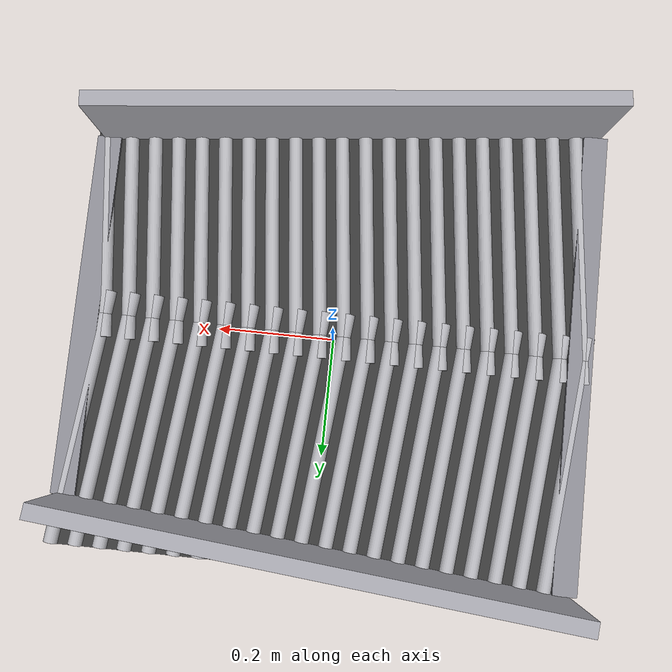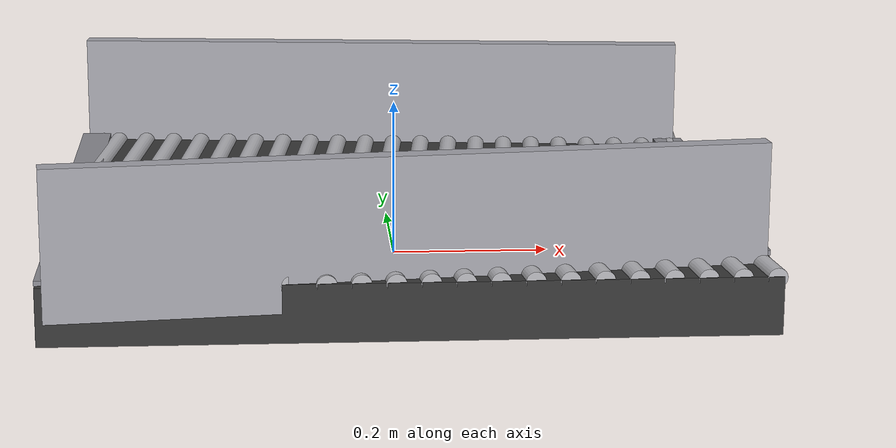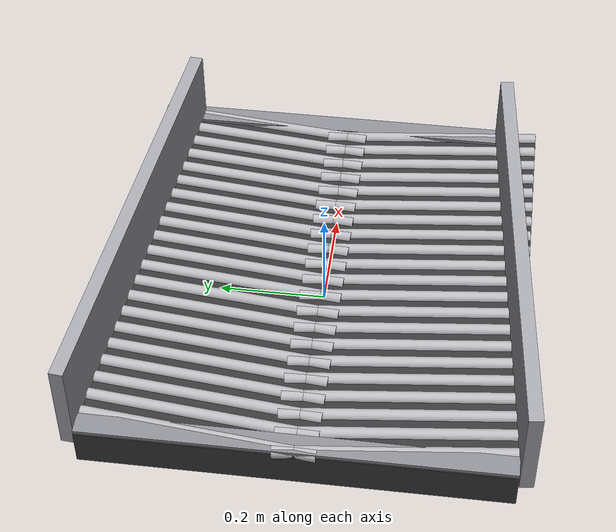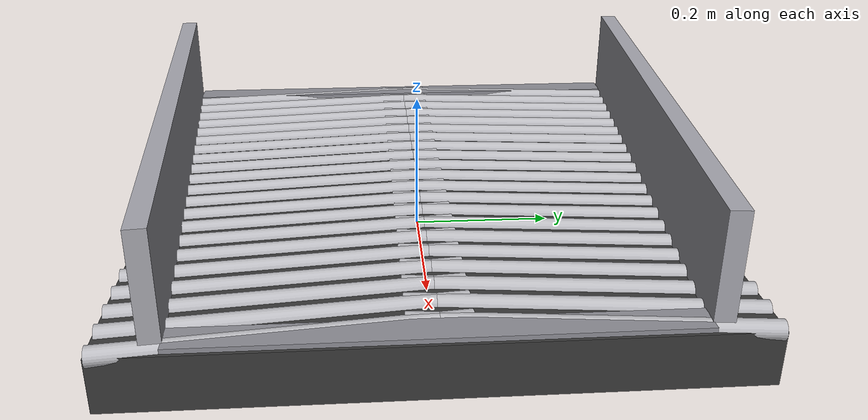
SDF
<?xml version="1.0"?>
<sdf version="1.10">
  <model name="roller_throat">
    <static>true</static>
    <link name="base">
      <collision name="base_collision"><pose>0 0 0.035 0 0 0</pose><geometry><box><size>0.86 0.76 0.07</size></box></geometry></collision>
      <visual name="base_visual"><pose>0 0 0.035 0 0 0</pose><geometry><box><size>0.86 0.76 0.07</size></box></geometry><material><ambient>0.16 0.16 0.16 1</ambient><diffuse>0.22 0.22 0.22 1</diffuse></material></visual>

      <!-- Plates are 1 mm below the moving surfaces and only catch an edge during transfer. -->
      <collision name="entry_transfer_collision">
        <pose>-0.410000 0 0.076000 0 0 0</pose>
        <geometry><box><size>0.040000 0.760000 0.006000</size></box></geometry>
        <surface><friction><ode><mu>0.05</mu><mu2>0.05</mu2><fdir1>1 0 0</fdir1></ode></friction></surface>
      </collision>
      <visual name="entry_transfer_visual">
        <pose>-0.410000 0 0.076000 0 0 0</pose>
        <geometry><box><size>0.040000 0.760000 0.006000</size></box></geometry>
        <material><ambient>0.45 0.45 0.48 1</ambient><diffuse>0.55 0.55 0.58 1</diffuse></material>
      </visual>

      <collision name="exit_transfer_collision">
        <pose>0.410000 0 0.076000 0 0 0</pose>
        <geometry><box><size>0.040000 0.600000 0.006000</size></box></geometry>
        <surface><friction><ode><mu>0.05</mu><mu2>0.05</mu2><fdir1>1 0 0</fdir1></ode></friction></surface>
      </collision>
      <visual name="exit_transfer_visual">
        <pose>0.410000 0 0.076000 0 0 0</pose>
        <geometry><box><size>0.040000 0.600000 0.006000</size></box></geometry>
        <material><ambient>0.45 0.45 0.48 1</ambient><diffuse>0.55 0.55 0.58 1</diffuse></material>
      </visual>

      <!-- A recessed low-friction tray prevents thin products falling between supports. -->
      <collision name="undertray_collision">
        <pose>0 0 0.071000 0 0 0</pose>
        <geometry><box><size>0.84 0.62 0.008000</size></box></geometry>
        <surface><friction><ode><mu>0.03</mu><mu2>0.03</mu2><fdir1>1 0 0</fdir1></ode></friction></surface>
      </collision>

      <collision name="left_guide_collision"><pose>0 -0.352500 0.125 0 0 0.099668652</pose><geometry><box><size>0.843990 0.025 0.18</size></box></geometry></collision>
      <visual name="left_guide_visual"><pose>0 -0.352500 0.125 0 0 0.099668652</pose><geometry><box><size>0.843990 0.025 0.18</size></box></geometry><material><ambient>0.55 0.55 0.58 1</ambient><diffuse>0.65 0.65 0.68 1</diffuse></material></visual>
      <collision name="right_guide_collision"><pose>0 0.352500 0.125 0 0 -0.099668652</pose><geometry><box><size>0.843990 0.025 0.18</size></box></geometry></collision>
      <visual name="right_guide_visual"><pose>0 0.352500 0.125 0 0 -0.099668652</pose><geometry><box><size>0.843990 0.025 0.18</size></box></geometry><material><ambient>0.55 0.55 0.58 1</ambient><diffuse>0.65 0.65 0.68 1</diffuse></material></visual>
    </link>

    <link name="left_rollers">

      <collision name="roller_00_collision">
        <pose>-0.400000 -0.170000 0.072000 0 0 1.675516082</pose>
        <max_contacts>8</max_contacts>
        <geometry><box><size>0.420000 0.022000 0.016000</size></box></geometry>
        <surface><friction><ode><mu>0.8</mu><mu2>0.8</mu2><fdir1>1 0 0</fdir1></ode></friction></surface>
      </collision>
      <visual name="roller_00_visual">
        <pose>-0.400000 -0.170000 0.068000 0 1.570796327 1.675516082</pose>
        <geometry><cylinder><radius>0.012000</radius><length>0.420000</length></cylinder></geometry>
        <material><ambient>0.72 0.72 0.74 1</ambient><diffuse>0.72 0.72 0.74 1</diffuse><specular>0.35 0.35 0.35 1</specular></material>
      </visual>

      <collision name="roller_01_collision">
        <pose>-0.360000 -0.170000 0.072000 0 0 1.675516082</pose>
        <max_contacts>8</max_contacts>
        <geometry><box><size>0.420000 0.022000 0.016000</size></box></geometry>
        <surface><friction><ode><mu>0.8</mu><mu2>0.8</mu2><fdir1>1 0 0</fdir1></ode></friction></surface>
      </collision>
      <visual name="roller_01_visual">
        <pose>-0.360000 -0.170000 0.068000 0 1.570796327 1.675516082</pose>
        <geometry><cylinder><radius>0.012000</radius><length>0.420000</length></cylinder></geometry>
        <material><ambient>0.72 0.72 0.74 1</ambient><diffuse>0.72 0.72 0.74 1</diffuse><specular>0.35 0.35 0.35 1</specular></material>
      </visual>

      <collision name="roller_02_collision">
        <pose>-0.320000 -0.170000 0.072000 0 0 1.675516082</pose>
        <max_contacts>8</max_contacts>
        <geometry><box><size>0.420000 0.022000 0.016000</size></box></geometry>
        <surface><friction><ode><mu>0.8</mu><mu2>0.8</mu2><fdir1>1 0 0</fdir1></ode></friction></surface>
      </collision>
      <visual name="roller_02_visual">
        <pose>-0.320000 -0.170000 0.068000 0 1.570796327 1.675516082</pose>
        <geometry><cylinder><radius>0.012000</radius><length>0.420000</length></cylinder></geometry>
        <material><ambient>0.72 0.72 0.74 1</ambient><diffuse>0.72 0.72 0.74 1</diffuse><specular>0.35 0.35 0.35 1</specular></material>
      </visual>

      <collision name="roller_03_collision">
        <pose>-0.280000 -0.170000 0.072000 0 0 1.675516082</pose>
        <max_contacts>8</max_contacts>
        <geometry><box><size>0.420000 0.022000 0.016000</size></box></geometry>
        <surface><friction><ode><mu>0.8</mu><mu2>0.8</mu2><fdir1>1 0 0</fdir1></ode></friction></surface>
      </collision>
      <visual name="roller_03_visual">
        <pose>-0.280000 -0.170000 0.068000 0 1.570796327 1.675516082</pose>
        <geometry><cylinder><radius>0.012000</radius><length>0.420000</length></cylinder></geometry>
        <material><ambient>0.72 0.72 0.74 1</ambient><diffuse>0.72 0.72 0.74 1</diffuse><specular>0.35 0.35 0.35 1</specular></material>
      </visual>

      <collision name="roller_04_collision">
        <pose>-0.240000 -0.170000 0.072000 0 0 1.675516082</pose>
        <max_contacts>8</max_contacts>
        <geometry><box><size>0.420000 0.022000 0.016000</size></box></geometry>
        <surface><friction><ode><mu>0.8</mu><mu2>0.8</mu2><fdir1>1 0 0</fdir1></ode></friction></surface>
      </collision>
      <visual name="roller_04_visual">
        <pose>-0.240000 -0.170000 0.068000 0 1.570796327 1.675516082</pose>
        <geometry><cylinder><radius>0.012000</radius><length>0.420000</length></cylinder></geometry>
        <material><ambient>0.72 0.72 0.74 1</ambient><diffuse>0.72 0.72 0.74 1</diffuse><specular>0.35 0.35 0.35 1</specular></material>
      </visual>

      <collision name="roller_05_collision">
        <pose>-0.200000 -0.170000 0.072000 0 0 1.675516082</pose>
        <max_contacts>8</max_contacts>
        <geometry><box><size>0.420000 0.022000 0.016000</size></box></geometry>
        <surface><friction><ode><mu>0.8</mu><mu2>0.8</mu2><fdir1>1 0 0</fdir1></ode></friction></surface>
      </collision>
      <visual name="roller_05_visual">
        <pose>-0.200000 -0.170000 0.068000 0 1.570796327 1.675516082</pose>
        <geometry><cylinder><radius>0.012000</radius><length>0.420000</length></cylinder></geometry>
        <material><ambient>0.72 0.72 0.74 1</ambient><diffuse>0.72 0.72 0.74 1</diffuse><specular>0.35 0.35 0.35 1</specular></material>
      </visual>

      <collision name="roller_06_collision">
        <pose>-0.160000 -0.170000 0.072000 0 0 1.675516082</pose>
        <max_contacts>8</max_contacts>
        <geometry><box><size>0.420000 0.022000 0.016000</size></box></geometry>
        <surface><friction><ode><mu>0.8</mu><mu2>0.8</mu2><fdir1>1 0 0</fdir1></ode></friction></surface>
      </collision>
      <visual name="roller_06_visual">
        <pose>-0.160000 -0.170000 0.068000 0 1.570796327 1.675516082</pose>
        <geometry><cylinder><radius>0.012000</radius><length>0.420000</length></cylinder></geometry>
        <material><ambient>0.72 0.72 0.74 1</ambient><diffuse>0.72 0.72 0.74 1</diffuse><specular>0.35 0.35 0.35 1</specular></material>
      </visual>

      <collision name="roller_07_collision">
        <pose>-0.120000 -0.170000 0.072000 0 0 1.675516082</pose>
        <max_contacts>8</max_contacts>
        <geometry><box><size>0.420000 0.022000 0.016000</size></box></geometry>
        <surface><friction><ode><mu>0.8</mu><mu2>0.8</mu2><fdir1>1 0 0</fdir1></ode></friction></surface>
      </collision>
      <visual name="roller_07_visual">
        <pose>-0.120000 -0.170000 0.068000 0 1.570796327 1.675516082</pose>
        <geometry><cylinder><radius>0.012000</radius><length>0.420000</length></cylinder></geometry>
        <material><ambient>0.72 0.72 0.74 1</ambient><diffuse>0.72 0.72 0.74 1</diffuse><specular>0.35 0.35 0.35 1</specular></material>
      </visual>

      <collision name="roller_08_collision">
        <pose>-0.080000 -0.170000 0.072000 0 0 1.675516082</pose>
        <max_contacts>8</max_contacts>
        <geometry><box><size>0.420000 0.022000 0.016000</size></box></geometry>
        <surface><friction><ode><mu>0.8</mu><mu2>0.8</mu2><fdir1>1 0 0</fdir1></ode></friction></surface>
      </collision>
      <visual name="roller_08_visual">
        <pose>-0.080000 -0.170000 0.068000 0 1.570796327 1.675516082</pose>
        <geometry><cylinder><radius>0.012000</radius><length>0.420000</length></cylinder></geometry>
        <material><ambient>0.72 0.72 0.74 1</ambient><diffuse>0.72 0.72 0.74 1</diffuse><specular>0.35 0.35 0.35 1</specular></material>
      </visual>

      <collision name="roller_09_collision">
        <pose>-0.040000 -0.170000 0.072000 0 0 1.675516082</pose>
        <max_contacts>8</max_contacts>
        <geometry><box><size>0.420000 0.022000 0.016000</size></box></geometry>
        <surface><friction><ode><mu>0.8</mu><mu2>0.8</mu2><fdir1>1 0 0</fdir1></ode></friction></surface>
      </collision>
      <visual name="roller_09_visual">
        <pose>-0.040000 -0.170000 0.068000 0 1.570796327 1.675516082</pose>
        <geometry><cylinder><radius>0.012000</radius><length>0.420000</length></cylinder></geometry>
        <material><ambient>0.72 0.72 0.74 1</ambient><diffuse>0.72 0.72 0.74 1</diffuse><specular>0.35 0.35 0.35 1</specular></material>
      </visual>

      <collision name="roller_10_collision">
        <pose>0.000000 -0.170000 0.072000 0 0 1.675516082</pose>
        <max_contacts>8</max_contacts>
        <geometry><box><size>0.420000 0.022000 0.016000</size></box></geometry>
        <surface><friction><ode><mu>0.8</mu><mu2>0.8</mu2><fdir1>1 0 0</fdir1></ode></friction></surface>
      </collision>
      <visual name="roller_10_visual">
        <pose>0.000000 -0.170000 0.068000 0 1.570796327 1.675516082</pose>
        <geometry><cylinder><radius>0.012000</radius><length>0.420000</length></cylinder></geometry>
        <material><ambient>0.72 0.72 0.74 1</ambient><diffuse>0.72 0.72 0.74 1</diffuse><specular>0.35 0.35 0.35 1</specular></material>
      </visual>

      <collision name="roller_11_collision">
        <pose>0.040000 -0.170000 0.072000 0 0 1.675516082</pose>
        <max_contacts>8</max_contacts>
        <geometry><box><size>0.420000 0.022000 0.016000</size></box></geometry>
        <surface><friction><ode><mu>0.8</mu><mu2>0.8</mu2><fdir1>1 0 0</fdir1></ode></friction></surface>
      </collision>
      <visual name="roller_11_visual">
        <pose>0.040000 -0.170000 0.068000 0 1.570796327 1.675516082</pose>
        <geometry><cylinder><radius>0.012000</radius><length>0.420000</length></cylinder></geometry>
        <material><ambient>0.72 0.72 0.74 1</ambient><diffuse>0.72 0.72 0.74 1</diffuse><specular>0.35 0.35 0.35 1</specular></material>
      </visual>

      <collision name="roller_12_collision">
        <pose>0.080000 -0.170000 0.072000 0 0 1.675516082</pose>
        <max_contacts>8</max_contacts>
        <geometry><box><size>0.420000 0.022000 0.016000</size></box></geometry>
        <surface><friction><ode><mu>0.8</mu><mu2>0.8</mu2><fdir1>1 0 0</fdir1></ode></friction></surface>
      </collision>
      <visual name="roller_12_visual">
        <pose>0.080000 -0.170000 0.068000 0 1.570796327 1.675516082</pose>
        <geometry><cylinder><radius>0.012000</radius><length>0.420000</length></cylinder></geometry>
        <material><ambient>0.72 0.72 0.74 1</ambient><diffuse>0.72 0.72 0.74 1</diffuse><specular>0.35 0.35 0.35 1</specular></material>
      </visual>

      <collision name="roller_13_collision">
        <pose>0.120000 -0.170000 0.072000 0 0 1.675516082</pose>
        <max_contacts>8</max_contacts>
        <geometry><box><size>0.420000 0.022000 0.016000</size></box></geometry>
        <surface><friction><ode><mu>0.8</mu><mu2>0.8</mu2><fdir1>1 0 0</fdir1></ode></friction></surface>
      </collision>
      <visual name="roller_13_visual">
        <pose>0.120000 -0.170000 0.068000 0 1.570796327 1.675516082</pose>
        <geometry><cylinder><radius>0.012000</radius><length>0.420000</length></cylinder></geometry>
        <material><ambient>0.72 0.72 0.74 1</ambient><diffuse>0.72 0.72 0.74 1</diffuse><specular>0.35 0.35 0.35 1</specular></material>
      </visual>

      <collision name="roller_14_collision">
        <pose>0.160000 -0.170000 0.072000 0 0 1.675516082</pose>
        <max_contacts>8</max_contacts>
        <geometry><box><size>0.420000 0.022000 0.016000</size></box></geometry>
        <surface><friction><ode><mu>0.8</mu><mu2>0.8</mu2><fdir1>1 0 0</fdir1></ode></friction></surface>
      </collision>
      <visual name="roller_14_visual">
        <pose>0.160000 -0.170000 0.068000 0 1.570796327 1.675516082</pose>
        <geometry><cylinder><radius>0.012000</radius><length>0.420000</length></cylinder></geometry>
        <material><ambient>0.72 0.72 0.74 1</ambient><diffuse>0.72 0.72 0.74 1</diffuse><specular>0.35 0.35 0.35 1</specular></material>
      </visual>

      <collision name="roller_15_collision">
        <pose>0.200000 -0.170000 0.072000 0 0 1.675516082</pose>
        <max_contacts>8</max_contacts>
        <geometry><box><size>0.420000 0.022000 0.016000</size></box></geometry>
        <surface><friction><ode><mu>0.8</mu><mu2>0.8</mu2><fdir1>1 0 0</fdir1></ode></friction></surface>
      </collision>
      <visual name="roller_15_visual">
        <pose>0.200000 -0.170000 0.068000 0 1.570796327 1.675516082</pose>
        <geometry><cylinder><radius>0.012000</radius><length>0.420000</length></cylinder></geometry>
        <material><ambient>0.72 0.72 0.74 1</ambient><diffuse>0.72 0.72 0.74 1</diffuse><specular>0.35 0.35 0.35 1</specular></material>
      </visual>

      <collision name="roller_16_collision">
        <pose>0.240000 -0.170000 0.072000 0 0 1.675516082</pose>
        <max_contacts>8</max_contacts>
        <geometry><box><size>0.420000 0.022000 0.016000</size></box></geometry>
        <surface><friction><ode><mu>0.8</mu><mu2>0.8</mu2><fdir1>1 0 0</fdir1></ode></friction></surface>
      </collision>
      <visual name="roller_16_visual">
        <pose>0.240000 -0.170000 0.068000 0 1.570796327 1.675516082</pose>
        <geometry><cylinder><radius>0.012000</radius><length>0.420000</length></cylinder></geometry>
        <material><ambient>0.72 0.72 0.74 1</ambient><diffuse>0.72 0.72 0.74 1</diffuse><specular>0.35 0.35 0.35 1</specular></material>
      </visual>

      <collision name="roller_17_collision">
        <pose>0.280000 -0.170000 0.072000 0 0 1.675516082</pose>
        <max_contacts>8</max_contacts>
        <geometry><box><size>0.420000 0.022000 0.016000</size></box></geometry>
        <surface><friction><ode><mu>0.8</mu><mu2>0.8</mu2><fdir1>1 0 0</fdir1></ode></friction></surface>
      </collision>
      <visual name="roller_17_visual">
        <pose>0.280000 -0.170000 0.068000 0 1.570796327 1.675516082</pose>
        <geometry><cylinder><radius>0.012000</radius><length>0.420000</length></cylinder></geometry>
        <material><ambient>0.72 0.72 0.74 1</ambient><diffuse>0.72 0.72 0.74 1</diffuse><specular>0.35 0.35 0.35 1</specular></material>
      </visual>

      <collision name="roller_18_collision">
        <pose>0.320000 -0.170000 0.072000 0 0 1.675516082</pose>
        <max_contacts>8</max_contacts>
        <geometry><box><size>0.420000 0.022000 0.016000</size></box></geometry>
        <surface><friction><ode><mu>0.8</mu><mu2>0.8</mu2><fdir1>1 0 0</fdir1></ode></friction></surface>
      </collision>
      <visual name="roller_18_visual">
        <pose>0.320000 -0.170000 0.068000 0 1.570796327 1.675516082</pose>
        <geometry><cylinder><radius>0.012000</radius><length>0.420000</length></cylinder></geometry>
        <material><ambient>0.72 0.72 0.74 1</ambient><diffuse>0.72 0.72 0.74 1</diffuse><specular>0.35 0.35 0.35 1</specular></material>
      </visual>

      <collision name="roller_19_collision">
        <pose>0.360000 -0.170000 0.072000 0 0 1.675516082</pose>
        <max_contacts>8</max_contacts>
        <geometry><box><size>0.420000 0.022000 0.016000</size></box></geometry>
        <surface><friction><ode><mu>0.8</mu><mu2>0.8</mu2><fdir1>1 0 0</fdir1></ode></friction></surface>
      </collision>
      <visual name="roller_19_visual">
        <pose>0.360000 -0.170000 0.068000 0 1.570796327 1.675516082</pose>
        <geometry><cylinder><radius>0.012000</radius><length>0.420000</length></cylinder></geometry>
        <material><ambient>0.72 0.72 0.74 1</ambient><diffuse>0.72 0.72 0.74 1</diffuse><specular>0.35 0.35 0.35 1</specular></material>
      </visual>

      <collision name="roller_20_collision">
        <pose>0.400000 -0.170000 0.072000 0 0 1.675516082</pose>
        <max_contacts>8</max_contacts>
        <geometry><box><size>0.420000 0.022000 0.016000</size></box></geometry>
        <surface><friction><ode><mu>0.8</mu><mu2>0.8</mu2><fdir1>1 0 0</fdir1></ode></friction></surface>
      </collision>
      <visual name="roller_20_visual">
        <pose>0.400000 -0.170000 0.068000 0 1.570796327 1.675516082</pose>
        <geometry><cylinder><radius>0.012000</radius><length>0.420000</length></cylinder></geometry>
        <material><ambient>0.72 0.72 0.74 1</ambient><diffuse>0.72 0.72 0.74 1</diffuse><specular>0.35 0.35 0.35 1</specular></material>
      </visual>
    </link>

    <plugin filename="gz-sim-track-controller-system" name="gz::sim::systems::TrackController">
      <link>left_rollers</link>
      <track_orientation>0 0 0.104719755</track_orientation>
      <velocity_topic>/singulator/throat/left/cmd_vel</velocity_topic>
      <odometry_topic>/singulator/throat/left/odometry</odometry_topic>
      <odometry_publish_frequency>5</odometry_publish_frequency>
      <min_velocity>-3.0</min_velocity><max_velocity>3.0</max_velocity>
      <min_acceleration>-6.0</min_acceleration><max_acceleration>6.0</max_acceleration>
      <min_jerk>-30.0</min_jerk><max_jerk>30.0</max_jerk>
      <max_command_age>2.0</max_command_age>
    </plugin>

    <link name="right_rollers">

      <collision name="roller_00_collision">
        <pose>-0.400000 0.170000 0.072000 0 0 1.466076572</pose>
        <max_contacts>8</max_contacts>
        <geometry><box><size>0.420000 0.022000 0.016000</size></box></geometry>
        <surface><friction><ode><mu>0.8</mu><mu2>0.8</mu2><fdir1>1 0 0</fdir1></ode></friction></surface>
      </collision>
      <visual name="roller_00_visual">
        <pose>-0.400000 0.170000 0.068000 0 1.570796327 1.466076572</pose>
        <geometry><cylinder><radius>0.012000</radius><length>0.420000</length></cylinder></geometry>
        <material><ambient>0.72 0.72 0.74 1</ambient><diffuse>0.72 0.72 0.74 1</diffuse><specular>0.35 0.35 0.35 1</specular></material>
      </visual>

      <collision name="roller_01_collision">
        <pose>-0.360000 0.170000 0.072000 0 0 1.466076572</pose>
        <max_contacts>8</max_contacts>
        <geometry><box><size>0.420000 0.022000 0.016000</size></box></geometry>
        <surface><friction><ode><mu>0.8</mu><mu2>0.8</mu2><fdir1>1 0 0</fdir1></ode></friction></surface>
      </collision>
      <visual name="roller_01_visual">
        <pose>-0.360000 0.170000 0.068000 0 1.570796327 1.466076572</pose>
        <geometry><cylinder><radius>0.012000</radius><length>0.420000</length></cylinder></geometry>
        <material><ambient>0.72 0.72 0.74 1</ambient><diffuse>0.72 0.72 0.74 1</diffuse><specular>0.35 0.35 0.35 1</specular></material>
      </visual>

      <collision name="roller_02_collision">
        <pose>-0.320000 0.170000 0.072000 0 0 1.466076572</pose>
        <max_contacts>8</max_contacts>
        <geometry><box><size>0.420000 0.022000 0.016000</size></box></geometry>
        <surface><friction><ode><mu>0.8</mu><mu2>0.8</mu2><fdir1>1 0 0</fdir1></ode></friction></surface>
      </collision>
      <visual name="roller_02_visual">
        <pose>-0.320000 0.170000 0.068000 0 1.570796327 1.466076572</pose>
        <geometry><cylinder><radius>0.012000</radius><length>0.420000</length></cylinder></geometry>
        <material><ambient>0.72 0.72 0.74 1</ambient><diffuse>0.72 0.72 0.74 1</diffuse><specular>0.35 0.35 0.35 1</specular></material>
      </visual>

      <collision name="roller_03_collision">
        <pose>-0.280000 0.170000 0.072000 0 0 1.466076572</pose>
        <max_contacts>8</max_contacts>
        <geometry><box><size>0.420000 0.022000 0.016000</size></box></geometry>
        <surface><friction><ode><mu>0.8</mu><mu2>0.8</mu2><fdir1>1 0 0</fdir1></ode></friction></surface>
      </collision>
      <visual name="roller_03_visual">
        <pose>-0.280000 0.170000 0.068000 0 1.570796327 1.466076572</pose>
        <geometry><cylinder><radius>0.012000</radius><length>0.420000</length></cylinder></geometry>
        <material><ambient>0.72 0.72 0.74 1</ambient><diffuse>0.72 0.72 0.74 1</diffuse><specular>0.35 0.35 0.35 1</specular></material>
      </visual>

      <collision name="roller_04_collision">
        <pose>-0.240000 0.170000 0.072000 0 0 1.466076572</pose>
        <max_contacts>8</max_contacts>
        <geometry><box><size>0.420000 0.022000 0.016000</size></box></geometry>
        <surface><friction><ode><mu>0.8</mu><mu2>0.8</mu2><fdir1>1 0 0</fdir1></ode></friction></surface>
      </collision>
      <visual name="roller_04_visual">
        <pose>-0.240000 0.170000 0.068000 0 1.570796327 1.466076572</pose>
        <geometry><cylinder><radius>0.012000</radius><length>0.420000</length></cylinder></geometry>
        <material><ambient>0.72 0.72 0.74 1</ambient><diffuse>0.72 0.72 0.74 1</diffuse><specular>0.35 0.35 0.35 1</specular></material>
      </visual>

      <collision name="roller_05_collision">
        <pose>-0.200000 0.170000 0.072000 0 0 1.466076572</pose>
        <max_contacts>8</max_contacts>
        <geometry><box><size>0.420000 0.022000 0.016000</size></box></geometry>
        <surface><friction><ode><mu>0.8</mu><mu2>0.8</mu2><fdir1>1 0 0</fdir1></ode></friction></surface>
      </collision>
      <visual name="roller_05_visual">
        <pose>-0.200000 0.170000 0.068000 0 1.570796327 1.466076572</pose>
        <geometry><cylinder><radius>0.012000</radius><length>0.420000</length></cylinder></geometry>
        <material><ambient>0.72 0.72 0.74 1</ambient><diffuse>0.72 0.72 0.74 1</diffuse><specular>0.35 0.35 0.35 1</specular></material>
      </visual>

      <collision name="roller_06_collision">
        <pose>-0.160000 0.170000 0.072000 0 0 1.466076572</pose>
        <max_contacts>8</max_contacts>
        <geometry><box><size>0.420000 0.022000 0.016000</size></box></geometry>
        <surface><friction><ode><mu>0.8</mu><mu2>0.8</mu2><fdir1>1 0 0</fdir1></ode></friction></surface>
      </collision>
      <visual name="roller_06_visual">
        <pose>-0.160000 0.170000 0.068000 0 1.570796327 1.466076572</pose>
        <geometry><cylinder><radius>0.012000</radius><length>0.420000</length></cylinder></geometry>
        <material><ambient>0.72 0.72 0.74 1</ambient><diffuse>0.72 0.72 0.74 1</diffuse><specular>0.35 0.35 0.35 1</specular></material>
      </visual>

      <collision name="roller_07_collision">
        <pose>-0.120000 0.170000 0.072000 0 0 1.466076572</pose>
        <max_contacts>8</max_contacts>
        <geometry><box><size>0.420000 0.022000 0.016000</size></box></geometry>
        <surface><friction><ode><mu>0.8</mu><mu2>0.8</mu2><fdir1>1 0 0</fdir1></ode></friction></surface>
      </collision>
      <visual name="roller_07_visual">
        <pose>-0.120000 0.170000 0.068000 0 1.570796327 1.466076572</pose>
        <geometry><cylinder><radius>0.012000</radius><length>0.420000</length></cylinder></geometry>
        <material><ambient>0.72 0.72 0.74 1</ambient><diffuse>0.72 0.72 0.74 1</diffuse><specular>0.35 0.35 0.35 1</specular></material>
      </visual>

      <collision name="roller_08_collision">
        <pose>-0.080000 0.170000 0.072000 0 0 1.466076572</pose>
        <max_contacts>8</max_contacts>
        <geometry><box><size>0.420000 0.022000 0.016000</size></box></geometry>
        <surface><friction><ode><mu>0.8</mu><mu2>0.8</mu2><fdir1>1 0 0</fdir1></ode></friction></surface>
      </collision>
      <visual name="roller_08_visual">
        <pose>-0.080000 0.170000 0.068000 0 1.570796327 1.466076572</pose>
        <geometry><cylinder><radius>0.012000</radius><length>0.420000</length></cylinder></geometry>
        <material><ambient>0.72 0.72 0.74 1</ambient><diffuse>0.72 0.72 0.74 1</diffuse><specular>0.35 0.35 0.35 1</specular></material>
      </visual>

      <collision name="roller_09_collision">
        <pose>-0.040000 0.170000 0.072000 0 0 1.466076572</pose>
        <max_contacts>8</max_contacts>
        <geometry><box><size>0.420000 0.022000 0.016000</size></box></geometry>
        <surface><friction><ode><mu>0.8</mu><mu2>0.8</mu2><fdir1>1 0 0</fdir1></ode></friction></surface>
      </collision>
      <visual name="roller_09_visual">
        <pose>-0.040000 0.170000 0.068000 0 1.570796327 1.466076572</pose>
        <geometry><cylinder><radius>0.012000</radius><length>0.420000</length></cylinder></geometry>
        <material><ambient>0.72 0.72 0.74 1</ambient><diffuse>0.72 0.72 0.74 1</diffuse><specular>0.35 0.35 0.35 1</specular></material>
      </visual>

      <collision name="roller_10_collision">
        <pose>0.000000 0.170000 0.072000 0 0 1.466076572</pose>
        <max_contacts>8</max_contacts>
        <geometry><box><size>0.420000 0.022000 0.016000</size></box></geometry>
        <surface><friction><ode><mu>0.8</mu><mu2>0.8</mu2><fdir1>1 0 0</fdir1></ode></friction></surface>
      </collision>
      <visual name="roller_10_visual">
        <pose>0.000000 0.170000 0.068000 0 1.570796327 1.466076572</pose>
        <geometry><cylinder><radius>0.012000</radius><length>0.420000</length></cylinder></geometry>
        <material><ambient>0.72 0.72 0.74 1</ambient><diffuse>0.72 0.72 0.74 1</diffuse><specular>0.35 0.35 0.35 1</specular></material>
      </visual>

      <collision name="roller_11_collision">
        <pose>0.040000 0.170000 0.072000 0 0 1.466076572</pose>
        <max_contacts>8</max_contacts>
        <geometry><box><size>0.420000 0.022000 0.016000</size></box></geometry>
        <surface><friction><ode><mu>0.8</mu><mu2>0.8</mu2><fdir1>1 0 0</fdir1></ode></friction></surface>
      </collision>
      <visual name="roller_11_visual">
        <pose>0.040000 0.170000 0.068000 0 1.570796327 1.466076572</pose>
        <geometry><cylinder><radius>0.012000</radius><length>0.420000</length></cylinder></geometry>
        <material><ambient>0.72 0.72 0.74 1</ambient><diffuse>0.72 0.72 0.74 1</diffuse><specular>0.35 0.35 0.35 1</specular></material>
      </visual>

      <collision name="roller_12_collision">
        <pose>0.080000 0.170000 0.072000 0 0 1.466076572</pose>
        <max_contacts>8</max_contacts>
        <geometry><box><size>0.420000 0.022000 0.016000</size></box></geometry>
        <surface><friction><ode><mu>0.8</mu><mu2>0.8</mu2><fdir1>1 0 0</fdir1></ode></friction></surface>
      </collision>
      <visual name="roller_12_visual">
        <pose>0.080000 0.170000 0.068000 0 1.570796327 1.466076572</pose>
        <geometry><cylinder><radius>0.012000</radius><length>0.420000</length></cylinder></geometry>
        <material><ambient>0.72 0.72 0.74 1</ambient><diffuse>0.72 0.72 0.74 1</diffuse><specular>0.35 0.35 0.35 1</specular></material>
      </visual>

      <collision name="roller_13_collision">
        <pose>0.120000 0.170000 0.072000 0 0 1.466076572</pose>
        <max_contacts>8</max_contacts>
        <geometry><box><size>0.420000 0.022000 0.016000</size></box></geometry>
        <surface><friction><ode><mu>0.8</mu><mu2>0.8</mu2><fdir1>1 0 0</fdir1></ode></friction></surface>
      </collision>
      <visual name="roller_13_visual">
        <pose>0.120000 0.170000 0.068000 0 1.570796327 1.466076572</pose>
        <geometry><cylinder><radius>0.012000</radius><length>0.420000</length></cylinder></geometry>
        <material><ambient>0.72 0.72 0.74 1</ambient><diffuse>0.72 0.72 0.74 1</diffuse><specular>0.35 0.35 0.35 1</specular></material>
      </visual>

      <collision name="roller_14_collision">
        <pose>0.160000 0.170000 0.072000 0 0 1.466076572</pose>
        <max_contacts>8</max_contacts>
        <geometry><box><size>0.420000 0.022000 0.016000</size></box></geometry>
        <surface><friction><ode><mu>0.8</mu><mu2>0.8</mu2><fdir1>1 0 0</fdir1></ode></friction></surface>
      </collision>
      <visual name="roller_14_visual">
        <pose>0.160000 0.170000 0.068000 0 1.570796327 1.466076572</pose>
        <geometry><cylinder><radius>0.012000</radius><length>0.420000</length></cylinder></geometry>
        <material><ambient>0.72 0.72 0.74 1</ambient><diffuse>0.72 0.72 0.74 1</diffuse><specular>0.35 0.35 0.35 1</specular></material>
      </visual>

      <collision name="roller_15_collision">
        <pose>0.200000 0.170000 0.072000 0 0 1.466076572</pose>
        <max_contacts>8</max_contacts>
        <geometry><box><size>0.420000 0.022000 0.016000</size></box></geometry>
        <surface><friction><ode><mu>0.8</mu><mu2>0.8</mu2><fdir1>1 0 0</fdir1></ode></friction></surface>
      </collision>
      <visual name="roller_15_visual">
        <pose>0.200000 0.170000 0.068000 0 1.570796327 1.466076572</pose>
        <geometry><cylinder><radius>0.012000</radius><length>0.420000</length></cylinder></geometry>
        <material><ambient>0.72 0.72 0.74 1</ambient><diffuse>0.72 0.72 0.74 1</diffuse><specular>0.35 0.35 0.35 1</specular></material>
      </visual>

      <collision name="roller_16_collision">
        <pose>0.240000 0.170000 0.072000 0 0 1.466076572</pose>
        <max_contacts>8</max_contacts>
        <geometry><box><size>0.420000 0.022000 0.016000</size></box></geometry>
        <surface><friction><ode><mu>0.8</mu><mu2>0.8</mu2><fdir1>1 0 0</fdir1></ode></friction></surface>
      </collision>
      <visual name="roller_16_visual">
        <pose>0.240000 0.170000 0.068000 0 1.570796327 1.466076572</pose>
        <geometry><cylinder><radius>0.012000</radius><length>0.420000</length></cylinder></geometry>
        <material><ambient>0.72 0.72 0.74 1</ambient><diffuse>0.72 0.72 0.74 1</diffuse><specular>0.35 0.35 0.35 1</specular></material>
      </visual>

      <collision name="roller_17_collision">
        <pose>0.280000 0.170000 0.072000 0 0 1.466076572</pose>
        <max_contacts>8</max_contacts>
        <geometry><box><size>0.420000 0.022000 0.016000</size></box></geometry>
        <surface><friction><ode><mu>0.8</mu><mu2>0.8</mu2><fdir1>1 0 0</fdir1></ode></friction></surface>
      </collision>
      <visual name="roller_17_visual">
        <pose>0.280000 0.170000 0.068000 0 1.570796327 1.466076572</pose>
        <geometry><cylinder><radius>0.012000</radius><length>0.420000</length></cylinder></geometry>
        <material><ambient>0.72 0.72 0.74 1</ambient><diffuse>0.72 0.72 0.74 1</diffuse><specular>0.35 0.35 0.35 1</specular></material>
      </visual>

      <collision name="roller_18_collision">
        <pose>0.320000 0.170000 0.072000 0 0 1.466076572</pose>
        <max_contacts>8</max_contacts>
        <geometry><box><size>0.420000 0.022000 0.016000</size></box></geometry>
        <surface><friction><ode><mu>0.8</mu><mu2>0.8</mu2><fdir1>1 0 0</fdir1></ode></friction></surface>
      </collision>
      <visual name="roller_18_visual">
        <pose>0.320000 0.170000 0.068000 0 1.570796327 1.466076572</pose>
        <geometry><cylinder><radius>0.012000</radius><length>0.420000</length></cylinder></geometry>
        <material><ambient>0.72 0.72 0.74 1</ambient><diffuse>0.72 0.72 0.74 1</diffuse><specular>0.35 0.35 0.35 1</specular></material>
      </visual>

      <collision name="roller_19_collision">
        <pose>0.360000 0.170000 0.072000 0 0 1.466076572</pose>
        <max_contacts>8</max_contacts>
        <geometry><box><size>0.420000 0.022000 0.016000</size></box></geometry>
        <surface><friction><ode><mu>0.8</mu><mu2>0.8</mu2><fdir1>1 0 0</fdir1></ode></friction></surface>
      </collision>
      <visual name="roller_19_visual">
        <pose>0.360000 0.170000 0.068000 0 1.570796327 1.466076572</pose>
        <geometry><cylinder><radius>0.012000</radius><length>0.420000</length></cylinder></geometry>
        <material><ambient>0.72 0.72 0.74 1</ambient><diffuse>0.72 0.72 0.74 1</diffuse><specular>0.35 0.35 0.35 1</specular></material>
      </visual>

      <collision name="roller_20_collision">
        <pose>0.400000 0.170000 0.072000 0 0 1.466076572</pose>
        <max_contacts>8</max_contacts>
        <geometry><box><size>0.420000 0.022000 0.016000</size></box></geometry>
        <surface><friction><ode><mu>0.8</mu><mu2>0.8</mu2><fdir1>1 0 0</fdir1></ode></friction></surface>
      </collision>
      <visual name="roller_20_visual">
        <pose>0.400000 0.170000 0.068000 0 1.570796327 1.466076572</pose>
        <geometry><cylinder><radius>0.012000</radius><length>0.420000</length></cylinder></geometry>
        <material><ambient>0.72 0.72 0.74 1</ambient><diffuse>0.72 0.72 0.74 1</diffuse><specular>0.35 0.35 0.35 1</specular></material>
      </visual>
    </link>

    <plugin filename="gz-sim-track-controller-system" name="gz::sim::systems::TrackController">
      <link>right_rollers</link>
      <track_orientation>0 0 -0.104719755</track_orientation>
      <velocity_topic>/singulator/throat/right/cmd_vel</velocity_topic>
      <odometry_topic>/singulator/throat/right/odometry</odometry_topic>
      <odometry_publish_frequency>5</odometry_publish_frequency>
      <min_velocity>-3.0</min_velocity><max_velocity>3.0</max_velocity>
      <min_acceleration>-6.0</min_acceleration><max_acceleration>6.0</max_acceleration>
      <min_jerk>-30.0</min_jerk><max_jerk>30.0</max_jerk>
      <max_command_age>2.0</max_command_age>
    </plugin>
  </model>
</sdf>
